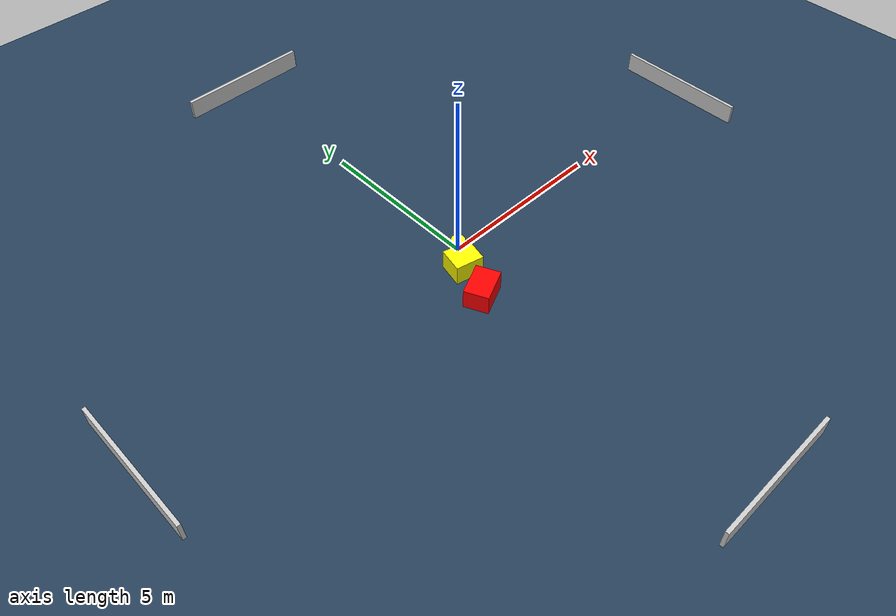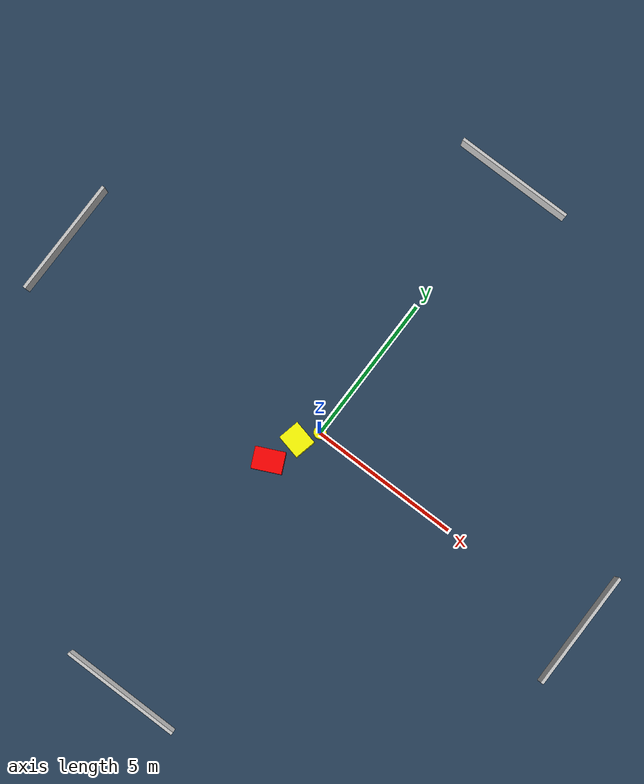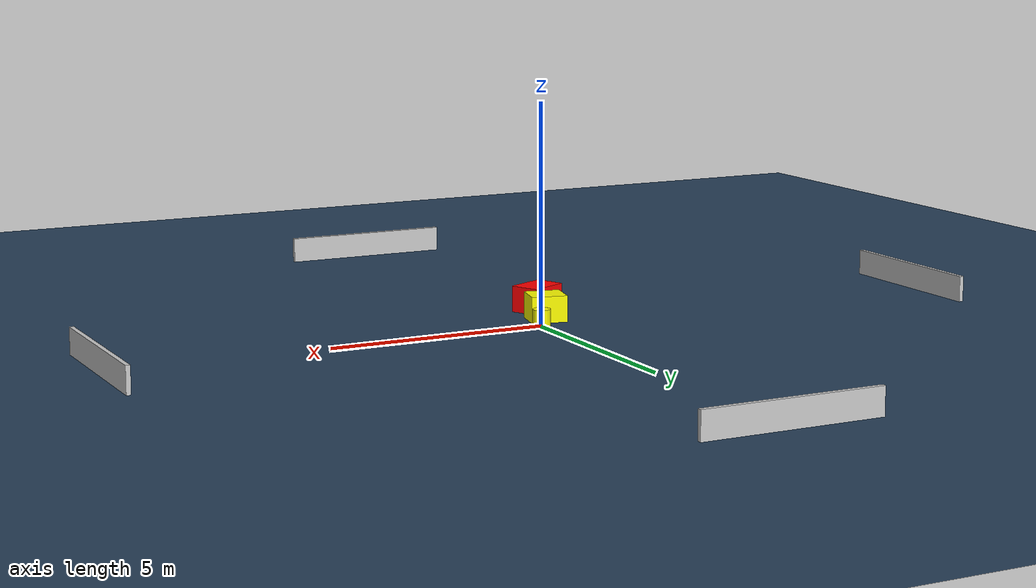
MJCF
<?xml version="1.0" ?>
<mujoco model="generated_environment">
  <option timestep="0.01" integrator="RK4" cone="elliptic"/>
  <default>
    <geom density="1"/>
  </default>
  <asset>
    <texture builtin="gradient" height="3072" name="skybox" rgb1="0.3 0.5 0.7" rgb2="0 0 0" type="skybox" width="512"/>
    <texture builtin="checker" height="300" name="groundplane" rgb1="0.2 0.3 0.4" rgb2="0.1 0.2 0.3" type="2d" width="300"/>
    <material name="groundplane" reflectance="0.2" texrepeat="5 5" texture="groundplane"/>
  </asset>
  <worldbody>
    <light dir="0 0 -1" directional="true" pos="0 0 1.5"/>
    <geom condim="3" friction="0.5 0.005 0.001" material="groundplane" name="floor" pos="0 0 0" size="0 0 0.05" type="plane"/>
    <body name="walls">
      <geom name="wall_1" condim="4" pos="-10.0 0.0 0.3" rgba="0.800000011920929 0.800000011920929 0.800000011920929 1.0" size="0.05 2.0 0.3" type="box"/>
      <geom name="wall_2" condim="4" pos="10.0 0.0 0.3" rgba="0.800000011920929 0.800000011920929 0.800000011920929 1.0" size="0.05 2.0 0.3" type="box"/>
      <geom name="wall_3" condim="4" pos="0.0 -10.0 0.3" rgba="0.800000011920929 0.800000011920929 0.800000011920929 1.0" size="2.0 0.05 0.3" type="box"/>
      <geom name="wall_4" condim="4" pos="0.0 10.0 0.3" rgba="0.800000011920929 0.800000011920929 0.800000011920929 1.0" size="2.0 0.05 0.3" type="box"/>
    </body>
    <body name="robot">
      <joint name="joint_x" type="slide" pos="0 0 0" axis="1 0 0"/>
      <joint name="joint_y" type="slide" pos="0 0 0" axis="0 1 0"/>
      <geom name="robot" type="cylinder" pos="0.0 0.0 0.2" size="0.2 0.2 0.0" mass="5.0" friction="1.0 0.005 0.0001" condim="4" rgba="1.0 1.0 0.0 1.0"/>
    </body>
    <body name="obstacle_1_movable">
      <geom name="obstacle_1_movable" condim="4" pos="-0.4213616823928429 -0.6194382205025243 0.3" euler="0 0 167.41588570858548" friction="0.0 0.005 0.001" rgba="1.0 1.0 0.0 1.0" size="0.4080318338558409 0.36117790589571963 0.3" type="box" mass="0.1"/>
      <joint type="free"/>
    </body>
    <body name="obstacle_2_static">
      <geom name="obstacle_2_static" condim="4" pos="-0.7360446917104194 -1.6518449329635465 0.3" euler="0 0 115.1397751214148" friction="0.0 0.005 0.001" rgba="1.0 0.0 0.0 1.0" size="0.35038088889293617 0.48407409019738873 0.3" type="box"/>
    </body>
  </worldbody>
  <actuator>
    <motor name="actuator_x" joint="joint_x" gear="1" ctrlrange="-1 1"/>
    <motor name="actuator_y" joint="joint_y" gear="1" ctrlrange="-1 1"/>
  </actuator>
</mujoco>
